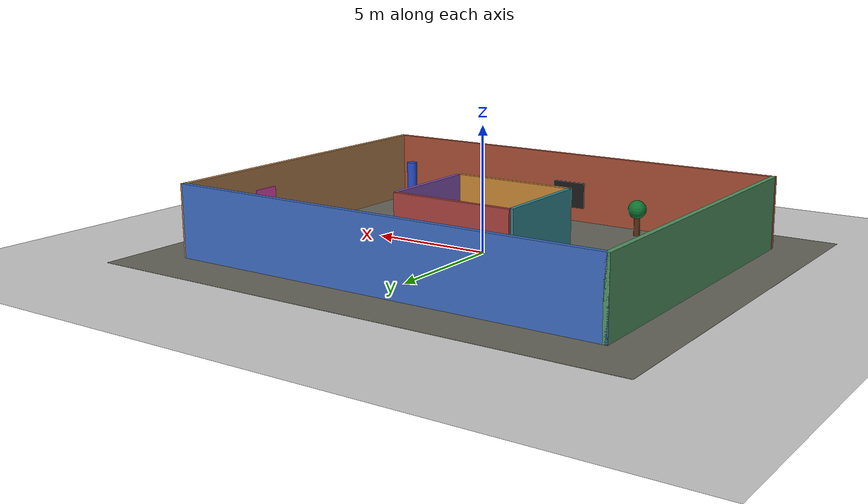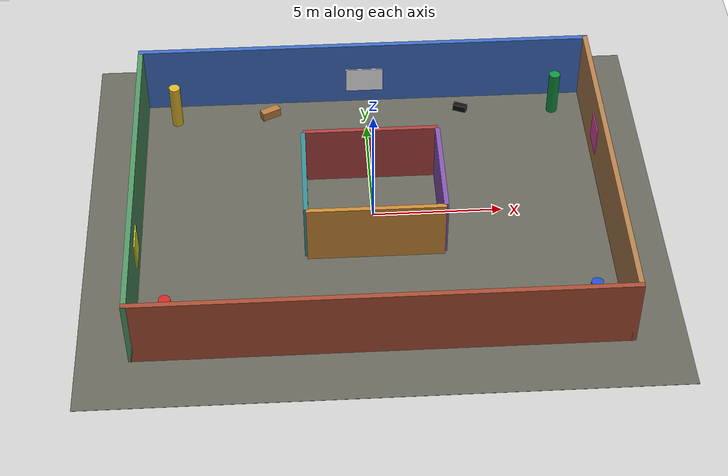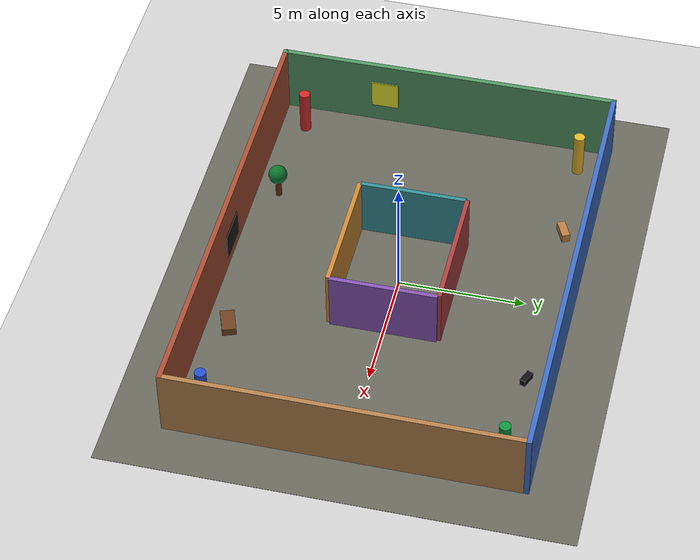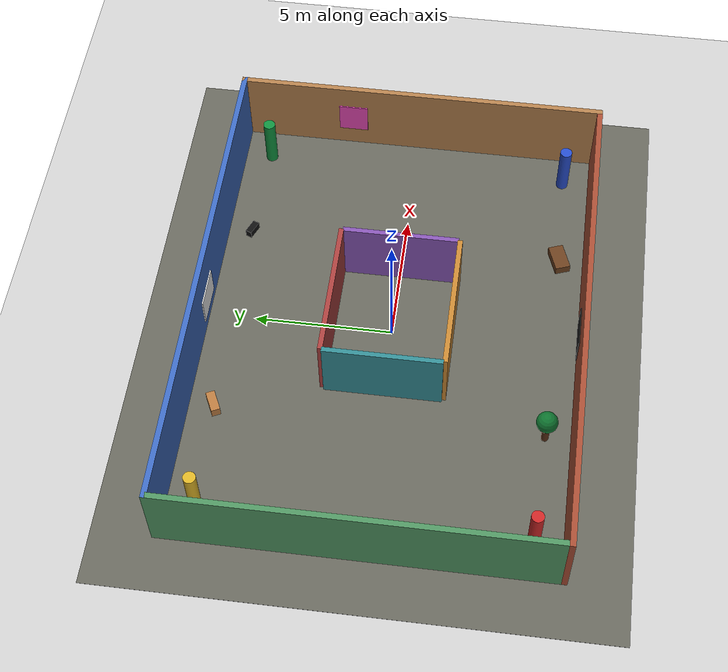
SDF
<?xml version="1.0" ?>
<sdf version="1.6">
  <world name="feature_loop_gallery">
    <include><uri>model://sun</uri></include>
    <include><uri>model://ground_plane</uri></include>

    <model name="floor"><static>true</static><pose>0 0 0.005 0 0 0</pose><link name="link">
      <collision name="c"><geometry><box><size>22 18 0.01</size></box></geometry></collision>
      <visual name="v"><geometry><box><size>22 18 0.01</size></box></geometry>
        <material><ambient>0.34 0.34 0.31 1</ambient><diffuse>0.40 0.40 0.36 1</diffuse></material>
      </visual>
    </link></model>

    <model name="outer_gallery_walls"><static>true</static>
      <link name="south_wall"><pose>0 -6.8 1.45 0 0 0</pose><collision name="c"><geometry><box><size>18.2 0.20 2.9</size></box></geometry></collision><visual name="v"><geometry><box><size>18.2 0.20 2.9</size></box></geometry><material><script><uri>file://media/materials/scripts/gazebo.material</uri><name>Gazebo/Bricks</name></script></material></visual></link>
      <link name="north_wall"><pose>0 6.8 1.45 0 0 0</pose><collision name="c"><geometry><box><size>18.2 0.20 2.9</size></box></geometry></collision><visual name="v"><geometry><box><size>18.2 0.20 2.9</size></box></geometry><material><ambient>0.24 0.42 0.76 1</ambient><diffuse>0.24 0.42 0.76 1</diffuse></material></visual></link>
      <link name="west_wall"><pose>-9.0 0 1.45 0 0 1.5708</pose><collision name="c"><geometry><box><size>13.8 0.20 2.9</size></box></geometry></collision><visual name="v"><geometry><box><size>13.8 0.20 2.9</size></box></geometry><material><ambient>0.31 0.58 0.38 1</ambient><diffuse>0.31 0.58 0.38 1</diffuse></material></visual></link>
      <link name="east_wall"><pose>9.0 0 1.45 0 0 1.5708</pose><collision name="c"><geometry><box><size>13.8 0.20 2.9</size></box></geometry></collision><visual name="v"><geometry><box><size>13.8 0.20 2.9</size></box></geometry><material><script><uri>file://media/materials/scripts/gazebo.material</uri><name>Gazebo/Wood</name></script></material></visual></link>
    </model>

    <model name="central_feature_island"><static>true</static>
      <link name="island_south"><pose>0 -2.15 1.25 0 0 0</pose><collision name="c"><geometry><box><size>5.2 0.18 2.5</size></box></geometry></collision><visual name="v"><geometry><box><size>5.2 0.18 2.5</size></box></geometry><material><ambient>0.78 0.53 0.20 1</ambient><diffuse>0.78 0.53 0.20 1</diffuse></material></visual></link>
      <link name="island_north"><pose>0 2.15 1.25 0 0 0</pose><collision name="c"><geometry><box><size>5.2 0.18 2.5</size></box></geometry></collision><visual name="v"><geometry><box><size>5.2 0.18 2.5</size></box></geometry><material><ambient>0.66 0.25 0.24 1</ambient><diffuse>0.66 0.25 0.24 1</diffuse></material></visual></link>
      <link name="island_west"><pose>-2.6 0 1.25 0 0 1.5708</pose><collision name="c"><geometry><box><size>4.2 0.18 2.5</size></box></geometry></collision><visual name="v"><geometry><box><size>4.2 0.18 2.5</size></box></geometry><material><ambient>0.20 0.55 0.58 1</ambient><diffuse>0.20 0.55 0.58 1</diffuse></material></visual></link>
      <link name="island_east"><pose>2.6 0 1.25 0 0 1.5708</pose><collision name="c"><geometry><box><size>4.2 0.18 2.5</size></box></geometry></collision><visual name="v"><geometry><box><size>4.2 0.18 2.5</size></box></geometry><material><ambient>0.52 0.33 0.70 1</ambient><diffuse>0.52 0.33 0.70 1</diffuse></material></visual></link>
    </model>

    <model name="slam_landmarks"><static>true</static>
      <link name="red_column_a"><pose>-7.7 -5.7 0.95 0 0 0</pose><collision name="c"><geometry><cylinder><radius>0.22</radius><length>1.9</length></cylinder></geometry></collision><visual name="v"><geometry><cylinder><radius>0.22</radius><length>1.9</length></cylinder></geometry><material><script><uri>file://media/materials/scripts/gazebo.material</uri><name>Gazebo/Red</name></script></material></visual></link>
      <link name="blue_column_b"><pose>7.7 -5.7 0.95 0 0 0</pose><collision name="c"><geometry><cylinder><radius>0.22</radius><length>1.9</length></cylinder></geometry></collision><visual name="v"><geometry><cylinder><radius>0.22</radius><length>1.9</length></cylinder></geometry><material><script><uri>file://media/materials/scripts/gazebo.material</uri><name>Gazebo/Blue</name></script></material></visual></link>
      <link name="green_column_c"><pose>7.7 5.7 0.95 0 0 0</pose><collision name="c"><geometry><cylinder><radius>0.22</radius><length>1.9</length></cylinder></geometry></collision><visual name="v"><geometry><cylinder><radius>0.22</radius><length>1.9</length></cylinder></geometry><material><ambient>0.06 0.56 0.24 1</ambient><diffuse>0.06 0.56 0.24 1</diffuse></material></visual></link>
      <link name="yellow_column_d"><pose>-7.7 5.7 0.95 0 0 0</pose><collision name="c"><geometry><cylinder><radius>0.22</radius><length>1.9</length></cylinder></geometry></collision><visual name="v"><geometry><cylinder><radius>0.22</radius><length>1.9</length></cylinder></geometry><material><ambient>0.86 0.70 0.15 1</ambient><diffuse>0.86 0.70 0.15 1</diffuse></material></visual></link>

      <link name="tree_trunk"><pose>-3.7 -5.8 0.45 0 0 0</pose><collision name="c"><geometry><cylinder><radius>0.13</radius><length>0.9</length></cylinder></geometry></collision><visual name="v"><geometry><cylinder><radius>0.13</radius><length>0.9</length></cylinder></geometry><material><ambient>0.34 0.18 0.08 1</ambient><diffuse>0.34 0.18 0.08 1</diffuse></material></visual></link>
      <link name="tree_top"><pose>-3.7 -5.8 1.10 0 0 0</pose><collision name="c"><geometry><sphere><radius>0.38</radius></sphere></geometry></collision><visual name="v"><geometry><sphere><radius>0.38</radius></sphere></geometry><material><ambient>0.05 0.45 0.18 1</ambient><diffuse>0.05 0.45 0.18 1</diffuse></material></visual></link>
      <link name="table"><pose>3.8 -5.8 0.36 0 0 0.35</pose><collision name="c"><geometry><box><size>1.0 0.55 0.32</size></box></geometry></collision><visual name="v"><geometry><box><size>1.0 0.55 0.32</size></box></geometry><material><ambient>0.42 0.25 0.12 1</ambient><diffuse>0.42 0.25 0.12 1</diffuse></material></visual></link>
      <link name="cat_marker"><pose>3.9 5.8 0.22 0 0 -0.4</pose><collision name="c"><geometry><box><size>0.55 0.24 0.28</size></box></geometry></collision><visual name="v"><geometry><box><size>0.55 0.24 0.28</size></box></geometry><material><ambient>0.06 0.06 0.06 1</ambient><diffuse>0.06 0.06 0.06 1</diffuse></material></visual></link>
      <link name="dog_marker"><pose>-3.9 5.8 0.28 0 0 0.45</pose><collision name="c"><geometry><box><size>0.78 0.32 0.36</size></box></geometry></collision><visual name="v"><geometry><box><size>0.78 0.32 0.36</size></box></geometry><material><ambient>0.72 0.48 0.25 1</ambient><diffuse>0.72 0.48 0.25 1</diffuse></material></visual></link>

      <link name="striped_panel_a"><pose>-8.88 -2.6 1.4 0 0 1.5708</pose><collision name="c"><geometry><box><size>1.1 0.04 1.2</size></box></geometry></collision><visual name="v"><geometry><box><size>1.1 0.04 1.2</size></box></geometry><material><ambient>0.92 0.92 0.18 1</ambient><diffuse>0.92 0.92 0.18 1</diffuse></material></visual></link>
      <link name="striped_panel_b"><pose>8.88 2.6 1.4 0 0 1.5708</pose><collision name="c"><geometry><box><size>1.1 0.04 1.2</size></box></geometry></collision><visual name="v"><geometry><box><size>1.1 0.04 1.2</size></box></geometry><material><ambient>0.90 0.28 0.70 1</ambient><diffuse>0.90 0.28 0.70 1</diffuse></material></visual></link>
      <link name="north_marker"><pose>0 6.66 1.15 0 0 0</pose><collision name="c"><geometry><box><size>1.5 0.04 1.1</size></box></geometry></collision><visual name="v"><geometry><box><size>1.5 0.04 1.1</size></box></geometry><material><ambient>0.95 0.95 0.95 1</ambient><diffuse>0.95 0.95 0.95 1</diffuse></material></visual></link>
      <link name="south_marker"><pose>0 -6.66 1.15 0 0 0</pose><collision name="c"><geometry><box><size>1.5 0.04 1.1</size></box></geometry></collision><visual name="v"><geometry><box><size>1.5 0.04 1.1</size></box></geometry><material><ambient>0.10 0.10 0.10 1</ambient><diffuse>0.10 0.10 0.10 1</diffuse></material></visual></link>
    </model>
  </world>
</sdf>
